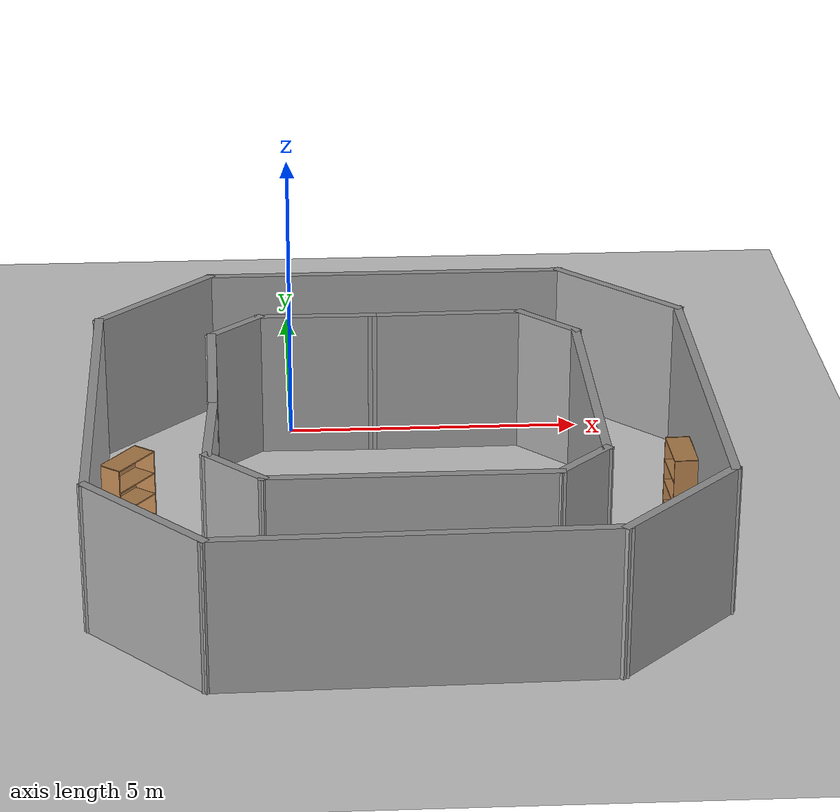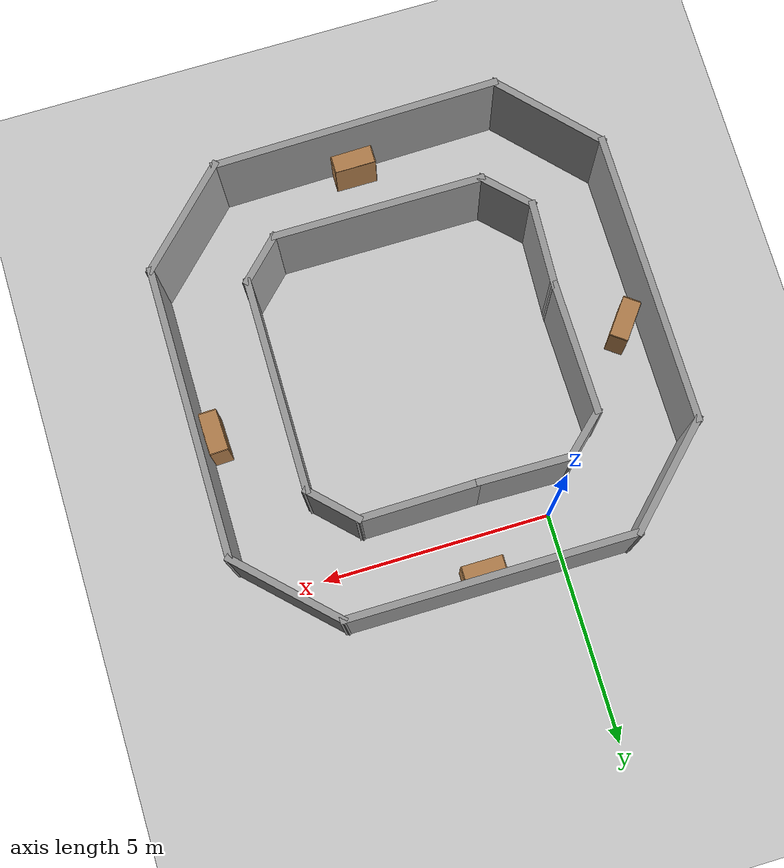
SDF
<sdf version="1.7">
 <world name="default">
  <light name="sun" type="directional">
   <pose>0 0 10 0 -0 0</pose>
   <diffuse>0.8 0.8 0.8 1</diffuse>
   <specular>0.2 0.2 0.2 1</specular>
   <attenuation>
    <range>1000</range>
    <constant>0.9</constant>
    <linear>0.01</linear>
    <quadratic>0.001</quadratic>
   </attenuation>
   <direction>-0.5 0.1 -0.9</direction>
   <spot><inner_angle>0</inner_angle><outer_angle>0</outer_angle><falloff>0</falloff></spot>
  </light>
  <model name="ground_plane">
   <static>1</static>
   <link name="link">
    <collision name="collision">
     <geometry><plane><normal>0 0 1</normal><size>100 100</size></plane></geometry>
     <surface>
      <contact><collide_bitmask>65535</collide_bitmask></contact>
      <friction><ode><mu>100</mu><mu2>50</mu2></ode></friction>
     </surface>
    </collision>
    <visual name="visual">
     <cast_shadows>0</cast_shadows>
     <geometry><plane><normal>0 0 1</normal><size>100 100</size></plane></geometry>
     <material>
      <script><uri>file://media/materials/scripts/gazebo.material</uri><name>Gazebo/Grey</name></script>
     </material>
    </visual>
   </link>
  </model>
  <gravity>0 0 -9.8</gravity>
  <magnetic_field>6e-06 2.3e-05 -4.2e-05</magnetic_field>
  <atmosphere type="adiabatic"/>
  <physics type="ode">
   <max_step_size>0.001</max_step_size>
   <real_time_factor>1</real_time_factor>
   <real_time_update_rate>1000</real_time_update_rate>
  </physics>
  <scene><ambient>0.4 0.4 0.4 1</ambient><background>0.7 0.7 0.7 1</background><shadows>1</shadows></scene>
  <spherical_coordinates>
   <surface_model>EARTH_WGS84</surface_model>
   <latitude_deg>0</latitude_deg>
   <longitude_deg>0</longitude_deg>
   <elevation>0</elevation>
   <heading_deg>0</heading_deg>
  </spherical_coordinates>
  <model name="tez_dunya">
   <pose>1.7001 -3.83559 0 0 -0 0</pose>
   <link name="Wall_103">
    <collision name="Wall_103_Collision">
     <geometry><box><size>1.25909 0.15 2.5</size></box></geometry>
     <pose>0 0 1.25 0 -0 0</pose>
    </collision>
    <visual name="Wall_103_Visual">
     <pose>0 0 1.25 0 -0 0</pose>
     <geometry><box><size>1.25909 0.15 2.5</size></box></geometry>
     <material>
      <script><uri>file://media/materials/scripts/gazebo.material</uri><name>Gazebo/Grey</name></script>
      <ambient>1 1 1 1</ambient>
     </material>
     <meta><layer>0</layer></meta>
    </visual>
    <pose>2.66538 -2.64003 0 0 -0 0.779547</pose>
   </link>
   <link name="Wall_104">
    <collision name="Wall_104_Collision">
     <geometry><box><size>4.68559 0.15 2.5</size></box></geometry>
     <pose>0 0 1.25 0 -0 0</pose>
    </collision>
    <visual name="Wall_104_Visual">
     <pose>0 0 1.25 0 -0 0</pose>
     <geometry><box><size>4.68559 0.15 2.5</size></box></geometry>
     <material>
      <script><uri>file://media/materials/scripts/gazebo.material</uri><name>Gazebo/Grey</name></script>
      <ambient>1 1 1 1</ambient>
     </material>
     <meta><layer>0</layer></meta>
    </visual>
    <pose>3.0674 0.01757 0 0 -0 1.56744</pose>
   </link>
   <link name="Wall_105">
    <collision name="Wall_105_Collision">
     <geometry><box><size>1.35208 0.15 2.5</size></box></geometry>
     <pose>0 0 1.25 0 -0 0</pose>
    </collision>
    <visual name="Wall_105_Visual">
     <pose>0 0 1.25 0 -0 0</pose>
     <geometry><box><size>1.35208 0.15 2.5</size></box></geometry>
     <material>
      <script><uri>file://media/materials/scripts/gazebo.material</uri><name>Gazebo/Grey</name></script>
      <ambient>1 1 1 1</ambient>
     </material>
     <meta><layer>0</layer></meta>
    </visual>
    <pose>2.65 2.71035 0 0 -0 2.35619</pose>
   </link>
   <link name="Wall_106">
    <collision name="Wall_106_Collision">
     <geometry><box><size>2.6797 0.15 2.5</size></box></geometry>
     <pose>0 0 1.25 0 -0 0</pose>
    </collision>
    <visual name="Wall_106_Visual">
     <pose>0 0 1.25 0 -0 0</pose>
     <geometry><box><size>2.6797 0.15 2.5</size></box></geometry>
     <material>
      <script><uri>file://media/materials/scripts/gazebo.material</uri><name>Gazebo/Grey</name></script>
      <ambient>1 1 1 1</ambient>
     </material>
     <meta><layer>0</layer></meta>
    </visual>
    <pose>0.960238 3.12058 0 0 -0 -3.12992</pose>
   </link>
   <link name="Wall_108">
    <collision name="Wall_108_Collision">
     <geometry><box><size>4.63058 0.15 2.5</size></box></geometry>
     <pose>0 0 1.25 0 -0 0</pose>
    </collision>
    <visual name="Wall_108_Visual">
     <pose>0 0 1.25 0 -0 0</pose>
     <geometry><box><size>4.63058 0.15 2.5</size></box></geometry>
     <material>
      <script><uri>file://media/materials/scripts/gazebo.material</uri><name>Gazebo/Grey</name></script>
      <ambient>1 1 1 1</ambient>
     </material>
     <meta><layer>0</layer></meta>
    </visual>
    <pose>0.030681 -3.02985 0 0 -0 -4e-06</pose>
   </link>
   <link name="Wall_21">
    <collision name="Wall_21_Collision">
     <geometry><box><size>2.74566 0.15 2.5</size></box></geometry>
     <pose>0 0 1.25 0 -0 0</pose>
    </collision>
    <visual name="Wall_21_Visual">
     <pose>0 0 1.25 0 -0 0</pose>
     <geometry><box><size>2.74566 0.15 2.5</size></box></geometry>
     <material>
      <script><uri>file://media/materials/scripts/gazebo.material</uri><name>Gazebo/Grey</name></script>
      <ambient>1 1 1 1</ambient>
     </material>
     <meta><layer>0</layer></meta>
    </visual>
    <pose>-3.98232 -4.04279 0 0 -0 2.32868</pose>
   </link>
   <link name="Wall_41">
    <collision name="Wall_41_Collision">
     <geometry><box><size>2.77707 0.15 2.5</size></box></geometry>
     <pose>0 0 1.25 0 -0 0</pose>
    </collision>
    <visual name="Wall_41_Visual">
     <pose>0 0 1.25 0 -0 0</pose>
     <geometry><box><size>2.77707 0.15 2.5</size></box></geometry>
     <material>
      <script><uri>file://media/materials/scripts/gazebo.material</uri><name>Gazebo/Grey</name></script>
      <ambient>1 1 1 1</ambient>
     </material>
     <meta><layer>0</layer></meta>
    </visual>
    <pose>-4 4.05275 0 0 -0 0.789492</pose>
   </link>
   <link name="Wall_42">
    <collision name="Wall_42_Collision">
     <geometry><box><size>6.3 0.15 2.5</size></box></geometry>
     <pose>0 0 1.25 0 -0 0</pose>
    </collision>
    <visual name="Wall_42_Visual">
     <pose>0 0 1.25 0 -0 0</pose>
     <geometry><box><size>6.3 0.15 2.5</size></box></geometry>
     <material>
      <script><uri>file://media/materials/scripts/gazebo.material</uri><name>Gazebo/Grey</name></script>
      <ambient>1 1 1 1</ambient>
     </material>
     <meta><layer>0</layer></meta>
    </visual>
    <pose>1e-06 4.98535 0 0 -0 0</pose>
   </link>
   <link name="Wall_43">
    <collision name="Wall_43_Collision">
     <geometry><box><size>2.74766 0.15 2.5</size></box></geometry>
     <pose>0 0 1.25 0 -0 0</pose>
    </collision>
    <visual name="Wall_43_Visual">
     <pose>0 0 1.25 0 -0 0</pose>
     <geometry><box><size>2.74766 0.15 2.5</size></box></geometry>
     <material>
      <script><uri>file://media/materials/scripts/gazebo.material</uri><name>Gazebo/Grey</name></script>
      <ambient>1 1 1 1</ambient>
     </material>
     <meta><layer>0</layer></meta>
    </visual>
    <pose>4 4.07358 0 0 -0 -0.778198</pose>
   </link>
   <link name="Wall_44">
    <collision name="Wall_44_Collision">
     <geometry><box><size>6.35304 0.15 2.5</size></box></geometry>
     <pose>0 0 1.25 0 -0 0</pose>
    </collision>
    <visual name="Wall_44_Visual">
     <pose>0 0 1.25 0 -0 0</pose>
     <geometry><box><size>6.35304 0.15 2.5</size></box></geometry>
     <material>
      <script><uri>file://media/materials/scripts/gazebo.material</uri><name>Gazebo/Grey</name></script>
      <ambient>1 1 1 1</ambient>
     </material>
     <meta><layer>0</layer></meta>
    </visual>
    <pose>4.91737 0.060291 0 0 -0 -1.57326</pose>
   </link>
   <link name="Wall_45">
    <collision name="Wall_45_Collision">
     <geometry><box><size>2.77974 0.15 2.5</size></box></geometry>
     <pose>0 0 1.25 0 -0 0</pose>
    </collision>
    <visual name="Wall_45_Visual">
     <pose>0 0 1.25 0 -0 0</pose>
     <geometry><box><size>2.77974 0.15 2.5</size></box></geometry>
     <material>
      <script><uri>file://media/materials/scripts/gazebo.material</uri><name>Gazebo/Grey</name></script>
      <ambient>1 1 1 1</ambient>
     </material>
     <meta><layer>0</layer></meta>
    </visual>
    <pose>3.97716 -3.96814 0 0 -0 -2.35923</pose>
   </link>
   <link name="Wall_47">
    <collision name="Wall_47_Collision">
     <geometry><box><size>6.3 0.15 2.5</size></box></geometry>
     <pose>0 0 1.25 0 -0 0</pose>
    </collision>
    <visual name="Wall_47_Visual">
     <pose>0 0 1.25 0 -0 0</pose>
     <geometry><box><size>6.3 0.15 2.5</size></box></geometry>
     <material>
      <script><uri>file://media/materials/scripts/gazebo.material</uri><name>Gazebo/Grey</name></script>
      <ambient>1 1 1 1</ambient>
     </material>
     <meta><layer>0</layer></meta>
    </visual>
    <pose>-0.015208 -4.93262 0 0 -0 0.017159</pose>
   </link>
   <link name="Wall_49">
    <collision name="Wall_49_Collision">
     <geometry><box><size>6.37054 0.15 2.5</size></box></geometry>
     <pose>0 0 1.25 0 -0 0</pose>
    </collision>
    <visual name="Wall_49_Visual">
     <pose>0 0 1.25 0 -0 0</pose>
     <geometry><box><size>6.37054 0.15 2.5</size></box></geometry>
     <material>
      <script><uri>file://media/materials/scripts/gazebo.material</uri><name>Gazebo/Grey</name></script>
      <ambient>1 1 1 1</ambient>
     </material>
     <meta><layer>0</layer></meta>
    </visual>
    <pose>-4.89971 0.009975 0 0 -0 -1.56267</pose>
   </link>
   <link name="Wall_82">
    <collision name="Wall_82_Collision">
     <geometry><box><size>1.95383 0.15 2.5</size></box></geometry>
     <pose>0 0 1.25 0 -0 0</pose>
    </collision>
    <visual name="Wall_82_Visual">
     <pose>0 0 1.25 0 -0 0</pose>
     <geometry><box><size>1.95383 0.15 2.5</size></box></geometry>
     <material>
      <script><uri>file://media/materials/scripts/gazebo.material</uri><name>Gazebo/Grey</name></script>
      <ambient>1 1 1 1</ambient>
     </material>
     <meta><layer>0</layer></meta>
    </visual>
    <pose>-3.01947 -1.27882 0 0 -0 -1.61532</pose>
   </link>
   <link name="Wall_83">
    <collision name="Wall_83_Collision">
     <geometry><box><size>1.35208 0.15 2.5</size></box></geometry>
     <pose>0 0 1.25 0 -0 0</pose>
    </collision>
    <visual name="Wall_83_Visual">
     <pose>0 0 1.25 0 -0 0</pose>
     <geometry><box><size>1.35208 0.15 2.5</size></box></geometry>
     <material>
      <script><uri>file://media/materials/scripts/gazebo.material</uri><name>Gazebo/Grey</name></script>
      <ambient>1 1 1 1</ambient>
     </material>
     <meta><layer>0</layer></meta>
    </visual>
    <pose>-2.63461 -2.60484 0 0 -0 -0.785398</pose>
   </link>
   <link name="Wall_90">
    <collision name="Wall_90_Collision">
     <geometry><box><size>2.91928 0.15 2.5</size></box></geometry>
     <pose>0 0 1.25 0 -0 0</pose>
    </collision>
    <visual name="Wall_90_Visual">
     <pose>0 0 1.25 0 -0 0</pose>
     <geometry><box><size>2.91928 0.15 2.5</size></box></geometry>
     <material>
      <script><uri>file://media/materials/scripts/gazebo.material</uri><name>Gazebo/Grey</name></script>
      <ambient>1 1 1 1</ambient>
     </material>
     <meta><layer>0</layer></meta>
    </visual>
    <pose>-3.00071 0.993453 0 0 -0 1.58624</pose>
   </link>
   <link name="Wall_91">
    <collision name="Wall_91_Collision">
     <geometry><box><size>1.2405 0.15 2.5</size></box></geometry>
     <pose>0 0 1.25 0 -0 0</pose>
    </collision>
    <visual name="Wall_91_Visual">
     <pose>0 0 1.25 0 -0 0</pose>
     <geometry><box><size>1.2405 0.15 2.5</size></box></geometry>
     <material>
      <script><uri>file://media/materials/scripts/gazebo.material</uri><name>Gazebo/Grey</name></script>
      <ambient>1 1 1 1</ambient>
     </material>
     <meta><layer>0</layer></meta>
    </visual>
    <pose>-2.62355 2.76325 0 0 -0 0.75109</pose>
   </link>
   <link name="Wall_92">
    <collision name="Wall_92_Collision">
     <geometry><box><size>2.0707 0.15 2.5</size></box></geometry>
     <pose>0 0 1.25 0 -0 0</pose>
    </collision>
    <visual name="Wall_92_Visual">
     <pose>0 0 1.25 0 -0 0</pose>
     <geometry><box><size>2.0707 0.15 2.5</size></box></geometry>
     <material>
      <script><uri>file://media/materials/scripts/gazebo.material</uri><name>Gazebo/Grey</name></script>
      <ambient>1 1 1 1</ambient>
     </material>
     <meta><layer>0</layer></meta>
    </visual>
    <pose>-1.26476 3.12058 0 0 -0 -0.015381</pose>
   </link>
   <static>1</static>
  </model>
  <model name="bookshelf">
   <static>1</static>
   <link name="link">
    <inertial><mass>1</mass></inertial>
    <collision name="back">
     <pose>0 0.005 0.6 0 -0 0</pose>
     <geometry><box><size>0.9 0.01 1.2</size></box></geometry>
    </collision>
    <visual name="visual1">
     <pose>0 0.005 0.6 0 -0 0</pose>
     <geometry><box><size>0.9 0.01 1.2</size></box></geometry>
     <material>
      <script><uri>file://media/materials/scripts/gazebo.material</uri><name>Gazebo/Wood</name></script>
     </material>
    </visual>
    <collision name="left_side">
     <pose>0.45 -0.195 0.6 0 -0 0</pose>
     <geometry><box><size>0.02 0.4 1.2</size></box></geometry>
    </collision>
    <visual name="visual2">
     <pose>0.45 -0.195 0.6 0 -0 0</pose>
     <geometry><box><size>0.02 0.4 1.2</size></box></geometry>
     <material>
      <script><uri>file://media/materials/scripts/gazebo.material</uri><name>Gazebo/Wood</name></script>
     </material>
    </visual>
    <collision name="right_side">
     <pose>-0.45 -0.195 0.6 0 -0 0</pose>
     <geometry><box><size>0.02 0.4 1.2</size></box></geometry>
    </collision>
    <visual name="visual3">
     <pose>-0.45 -0.195 0.6 0 -0 0</pose>
     <geometry><box><size>0.02 0.4 1.2</size></box></geometry>
     <material>
      <script><uri>file://media/materials/scripts/gazebo.material</uri><name>Gazebo/Wood</name></script>
     </material>
    </visual>
    <collision name="bottom">
     <pose>0 -0.195 0.03 0 -0 0</pose>
     <geometry><box><size>0.88 0.4 0.06</size></box></geometry>
    </collision>
    <visual name="visual4">
     <pose>0 -0.195 0.03 0 -0 0</pose>
     <geometry><box><size>0.88 0.4 0.06</size></box></geometry>
     <material>
      <script><uri>file://media/materials/scripts/gazebo.material</uri><name>Gazebo/Wood</name></script>
     </material>
    </visual>
    <collision name="top">
     <pose>0 -0.195 1.19 0 -0 0</pose>
     <geometry><box><size>0.88 0.4 0.02</size></box></geometry>
    </collision>
    <visual name="visual5">
     <pose>0 -0.195 1.19 0 -0 0</pose>
     <geometry><box><size>0.88 0.4 0.02</size></box></geometry>
     <material>
      <script><uri>file://media/materials/scripts/gazebo.material</uri><name>Gazebo/Wood</name></script>
     </material>
    </visual>
    <collision name="low_shelf">
     <pose>0 -0.195 0.43 0 -0 0</pose>
     <geometry><box><size>0.88 0.4 0.02</size></box></geometry>
    </collision>
    <visual name="visual6">
     <pose>0 -0.195 0.43 0 -0 0</pose>
     <geometry><box><size>0.88 0.4 0.02</size></box></geometry>
     <material>
      <script><uri>file://media/materials/scripts/gazebo.material</uri><name>Gazebo/Wood</name></script>
     </material>
    </visual>
    <collision name="high_shelf">
     <pose>0 -0.195 0.8 0 -0 0</pose>
     <geometry><box><size>0.88 0.4 0.02</size></box></geometry>
    </collision>
    <visual name="visual7">
     <pose>0 -0.195 0.8 0 -0 0</pose>
     <geometry><box><size>0.88 0.4 0.02</size></box></geometry>
     <material>
      <script><uri>file://media/materials/scripts/gazebo.material</uri><name>Gazebo/Wood</name></script>
     </material>
    </visual>
   </link>
   <pose>1.73016 1.05203 0 0 -0 0</pose>
  </model>
  <model name="bookshelf_0">
   <static>1</static>
   <link name="link">
    <inertial><mass>1</mass></inertial>
    <collision name="back">
     <pose>0 0.005 0.6 0 -0 0</pose>
     <geometry><box><size>0.9 0.01 1.2</size></box></geometry>
    </collision>
    <visual name="visual1">
     <pose>0 0.005 0.6 0 -0 0</pose>
     <geometry><box><size>0.9 0.01 1.2</size></box></geometry>
     <material>
      <script><uri>file://media/materials/scripts/gazebo.material</uri><name>Gazebo/Wood</name></script>
     </material>
    </visual>
    <collision name="left_side">
     <pose>0.45 -0.195 0.6 0 -0 0</pose>
     <geometry><box><size>0.02 0.4 1.2</size></box></geometry>
    </collision>
    <visual name="visual2">
     <pose>0.45 -0.195 0.6 0 -0 0</pose>
     <geometry><box><size>0.02 0.4 1.2</size></box></geometry>
     <material>
      <script><uri>file://media/materials/scripts/gazebo.material</uri><name>Gazebo/Wood</name></script>
     </material>
    </visual>
    <collision name="right_side">
     <pose>-0.45 -0.195 0.6 0 -0 0</pose>
     <geometry><box><size>0.02 0.4 1.2</size></box></geometry>
    </collision>
    <visual name="visual3">
     <pose>-0.45 -0.195 0.6 0 -0 0</pose>
     <geometry><box><size>0.02 0.4 1.2</size></box></geometry>
     <material>
      <script><uri>file://media/materials/scripts/gazebo.material</uri><name>Gazebo/Wood</name></script>
     </material>
    </visual>
    <collision name="bottom">
     <pose>0 -0.195 0.03 0 -0 0</pose>
     <geometry><box><size>0.88 0.4 0.06</size></box></geometry>
    </collision>
    <visual name="visual4">
     <pose>0 -0.195 0.03 0 -0 0</pose>
     <geometry><box><size>0.88 0.4 0.06</size></box></geometry>
     <material>
      <script><uri>file://media/materials/scripts/gazebo.material</uri><name>Gazebo/Wood</name></script>
     </material>
    </visual>
    <collision name="top">
     <pose>0 -0.195 1.19 0 -0 0</pose>
     <geometry><box><size>0.88 0.4 0.02</size></box></geometry>
    </collision>
    <visual name="visual5">
     <pose>0 -0.195 1.19 0 -0 0</pose>
     <geometry><box><size>0.88 0.4 0.02</size></box></geometry>
     <material>
      <script><uri>file://media/materials/scripts/gazebo.material</uri><name>Gazebo/Wood</name></script>
     </material>
    </visual>
    <collision name="low_shelf">
     <pose>0 -0.195 0.43 0 -0 0</pose>
     <geometry><box><size>0.88 0.4 0.02</size></box></geometry>
    </collision>
    <visual name="visual6">
     <pose>0 -0.195 0.43 0 -0 0</pose>
     <geometry><box><size>0.88 0.4 0.02</size></box></geometry>
     <material>
      <script><uri>file://media/materials/scripts/gazebo.material</uri><name>Gazebo/Wood</name></script>
     </material>
    </visual>
    <collision name="high_shelf">
     <pose>0 -0.195 0.8 0 -0 0</pose>
     <geometry><box><size>0.88 0.4 0.02</size></box></geometry>
    </collision>
    <visual name="visual7">
     <pose>0 -0.195 0.8 0 -0 0</pose>
     <geometry><box><size>0.88 0.4 0.02</size></box></geometry>
     <material>
      <script><uri>file://media/materials/scripts/gazebo.material</uri><name>Gazebo/Wood</name></script>
     </material>
    </visual>
   </link>
   <pose>1.85637 -8.31349 0 0 -0 0</pose>
  </model>
  <model name="bookshelf_1">
   <static>1</static>
   <link name="link">
    <inertial><mass>1</mass></inertial>
    <collision name="back">
     <pose>0 0.005 0.6 0 -0 0</pose>
     <geometry><box><size>0.9 0.01 1.2</size></box></geometry>
    </collision>
    <visual name="visual1">
     <pose>0 0.005 0.6 0 -0 0</pose>
     <geometry><box><size>0.9 0.01 1.2</size></box></geometry>
     <material>
      <script><uri>file://media/materials/scripts/gazebo.material</uri><name>Gazebo/Wood</name></script>
     </material>
    </visual>
    <collision name="left_side">
     <pose>0.45 -0.195 0.6 0 -0 0</pose>
     <geometry><box><size>0.02 0.4 1.2</size></box></geometry>
    </collision>
    <visual name="visual2">
     <pose>0.45 -0.195 0.6 0 -0 0</pose>
     <geometry><box><size>0.02 0.4 1.2</size></box></geometry>
     <material>
      <script><uri>file://media/materials/scripts/gazebo.material</uri><name>Gazebo/Wood</name></script>
     </material>
    </visual>
    <collision name="right_side">
     <pose>-0.45 -0.195 0.6 0 -0 0</pose>
     <geometry><box><size>0.02 0.4 1.2</size></box></geometry>
    </collision>
    <visual name="visual3">
     <pose>-0.45 -0.195 0.6 0 -0 0</pose>
     <geometry><box><size>0.02 0.4 1.2</size></box></geometry>
     <material>
      <script><uri>file://media/materials/scripts/gazebo.material</uri><name>Gazebo/Wood</name></script>
     </material>
    </visual>
    <collision name="bottom">
     <pose>0 -0.195 0.03 0 -0 0</pose>
     <geometry><box><size>0.88 0.4 0.06</size></box></geometry>
    </collision>
    <visual name="visual4">
     <pose>0 -0.195 0.03 0 -0 0</pose>
     <geometry><box><size>0.88 0.4 0.06</size></box></geometry>
     <material>
      <script><uri>file://media/materials/scripts/gazebo.material</uri><name>Gazebo/Wood</name></script>
     </material>
    </visual>
    <collision name="top">
     <pose>0 -0.195 1.19 0 -0 0</pose>
     <geometry><box><size>0.88 0.4 0.02</size></box></geometry>
    </collision>
    <visual name="visual5">
     <pose>0 -0.195 1.19 0 -0 0</pose>
     <geometry><box><size>0.88 0.4 0.02</size></box></geometry>
     <material>
      <script><uri>file://media/materials/scripts/gazebo.material</uri><name>Gazebo/Wood</name></script>
     </material>
    </visual>
    <collision name="low_shelf">
     <pose>0 -0.195 0.43 0 -0 0</pose>
     <geometry><box><size>0.88 0.4 0.02</size></box></geometry>
    </collision>
    <visual name="visual6">
     <pose>0 -0.195 0.43 0 -0 0</pose>
     <geometry><box><size>0.88 0.4 0.02</size></box></geometry>
     <material>
      <script><uri>file://media/materials/scripts/gazebo.material</uri><name>Gazebo/Wood</name></script>
     </material>
    </visual>
    <collision name="high_shelf">
     <pose>0 -0.195 0.8 0 -0 0</pose>
     <geometry><box><size>0.88 0.4 0.02</size></box></geometry>
    </collision>
    <visual name="visual7">
     <pose>0 -0.195 0.8 0 -0 0</pose>
     <geometry><box><size>0.88 0.4 0.02</size></box></geometry>
     <material>
      <script><uri>file://media/materials/scripts/gazebo.material</uri><name>Gazebo/Wood</name></script>
     </material>
    </visual>
   </link>
   <pose>-2.86661 -3.29886 0 0 -0 0.930028</pose>
  </model>
  <model name="bookshelf_2">
   <static>1</static>
   <link name="link">
    <inertial><mass>1</mass></inertial>
    <collision name="back">
     <pose>0 0.005 0.6 0 -0 0</pose>
     <geometry><box><size>0.9 0.01 1.2</size></box></geometry>
    </collision>
    <visual name="visual1">
     <pose>0 0.005 0.6 0 -0 0</pose>
     <geometry><box><size>0.9 0.01 1.2</size></box></geometry>
     <material>
      <script><uri>file://media/materials/scripts/gazebo.material</uri><name>Gazebo/Wood</name></script>
     </material>
    </visual>
    <collision name="left_side">
     <pose>0.45 -0.195 0.6 0 -0 0</pose>
     <geometry><box><size>0.02 0.4 1.2</size></box></geometry>
    </collision>
    <visual name="visual2">
     <pose>0.45 -0.195 0.6 0 -0 0</pose>
     <geometry><box><size>0.02 0.4 1.2</size></box></geometry>
     <material>
      <script><uri>file://media/materials/scripts/gazebo.material</uri><name>Gazebo/Wood</name></script>
     </material>
    </visual>
    <collision name="right_side">
     <pose>-0.45 -0.195 0.6 0 -0 0</pose>
     <geometry><box><size>0.02 0.4 1.2</size></box></geometry>
    </collision>
    <visual name="visual3">
     <pose>-0.45 -0.195 0.6 0 -0 0</pose>
     <geometry><box><size>0.02 0.4 1.2</size></box></geometry>
     <material>
      <script><uri>file://media/materials/scripts/gazebo.material</uri><name>Gazebo/Wood</name></script>
     </material>
    </visual>
    <collision name="bottom">
     <pose>0 -0.195 0.03 0 -0 0</pose>
     <geometry><box><size>0.88 0.4 0.06</size></box></geometry>
    </collision>
    <visual name="visual4">
     <pose>0 -0.195 0.03 0 -0 0</pose>
     <geometry><box><size>0.88 0.4 0.06</size></box></geometry>
     <material>
      <script><uri>file://media/materials/scripts/gazebo.material</uri><name>Gazebo/Wood</name></script>
     </material>
    </visual>
    <collision name="top">
     <pose>0 -0.195 1.19 0 -0 0</pose>
     <geometry><box><size>0.88 0.4 0.02</size></box></geometry>
    </collision>
    <visual name="visual5">
     <pose>0 -0.195 1.19 0 -0 0</pose>
     <geometry><box><size>0.88 0.4 0.02</size></box></geometry>
     <material>
      <script><uri>file://media/materials/scripts/gazebo.material</uri><name>Gazebo/Wood</name></script>
     </material>
    </visual>
    <collision name="low_shelf">
     <pose>0 -0.195 0.43 0 -0 0</pose>
     <geometry><box><size>0.88 0.4 0.02</size></box></geometry>
    </collision>
    <visual name="visual6">
     <pose>0 -0.195 0.43 0 -0 0</pose>
     <geometry><box><size>0.88 0.4 0.02</size></box></geometry>
     <material>
      <script><uri>file://media/materials/scripts/gazebo.material</uri><name>Gazebo/Wood</name></script>
     </material>
    </visual>
    <collision name="high_shelf">
     <pose>0 -0.195 0.8 0 -0 0</pose>
     <geometry><box><size>0.88 0.4 0.02</size></box></geometry>
    </collision>
    <visual name="visual7">
     <pose>0 -0.195 0.8 0 -0 0</pose>
     <geometry><box><size>0.88 0.4 0.02</size></box></geometry>
     <material>
      <script><uri>file://media/materials/scripts/gazebo.material</uri><name>Gazebo/Wood</name></script>
     </material>
    </visual>
   </link>
   <pose>6.53581 -3.5314 0 0 0 -1.53888</pose>
  </model>
 </world>
</sdf>
